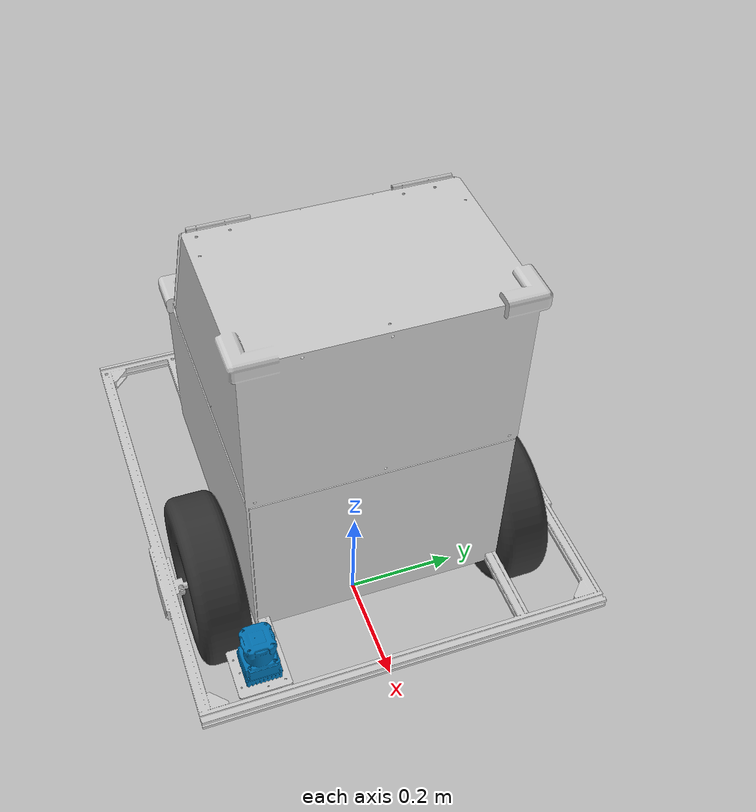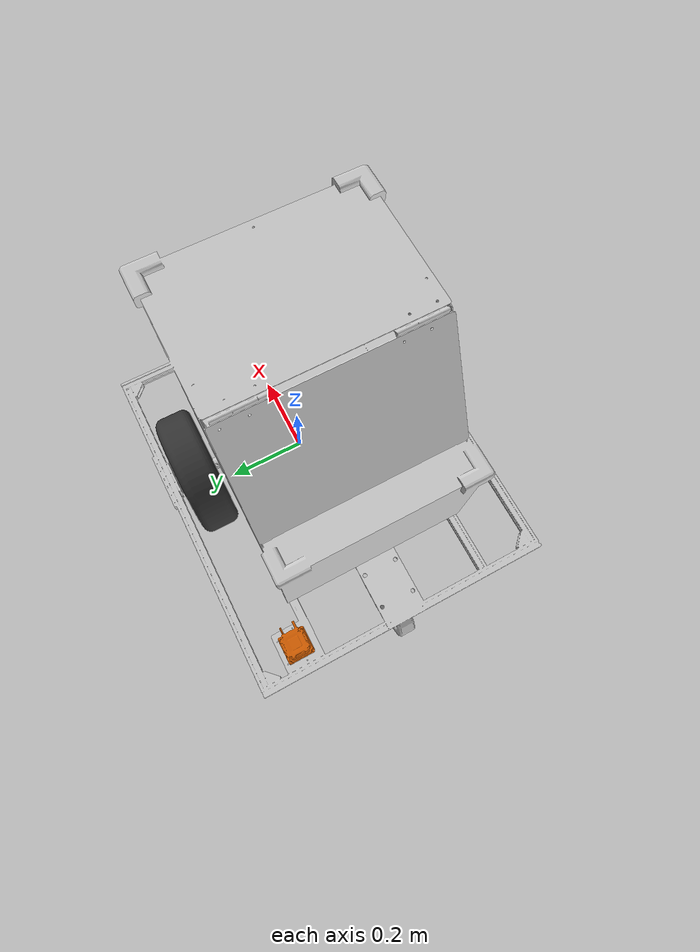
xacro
<?xml version="1.0"?>
<robot name="naviton" xmlns:xacro="http://ros.org/wiki/xacro">

  <xacro:include filename="$(find kcctsim)/urdf/base/base.urdf.xacro"/>
  <xacro:include filename="$(find kcctsim)/urdf/wheel/wheel.urdf.xacro"/>
  <xacro:include filename="$(find kcctsim)/urdf/sensors/gps/gps.urdf.xacro"/>
  <xacro:include filename="$(find kcctsim)/urdf/sensors/gim30/gim30.urdf.xacro"/>
  <xacro:include filename="$(find kcctsim)/urdf/sensors/lrf/lrf.urdf.xacro"/>
  <xacro:include filename="$(find velodyne_description)/urdf/HDL-32E.urdf.xacro"/>
  <xacro:include filename="$(find kcctsim)/urdf/sensors/imu/imu.urdf.xacro" />

  <!-- =============== Link & Joint =============== -->
  <!-- Base -->
  <link name="base_foot_point"/>
  <xacro:base_v0 parent="base_foot_point">
	<origin xyz="0 0 0.0"/>
  </xacro:base_v0>

  <!-- Wheel -->
  <!-- Right Wheel -->
  <xacro:wheel_v0 prefix="right" parent="base_link">
	<origin xyz="0 -0.2775 0.1575"/>
	<axis xyz="0 1 0"/>
  </xacro:wheel_v0>
  <!-- Left Wheel -->
  <xacro:wheel_v0 prefix="left" parent="base_link">
	<origin xyz="0 0.2775 0.1575" rpy="0 0 ${M_PI}"/>
	<axis xyz="0 -1 0"/>
  </xacro:wheel_v0>

  <!-- Sensors -->
  <!-- GPS -->

  <!-- Gim30 -->

  <!-- Front LRF -->
  <xacro:lrf_v0 prefix="front" parent="base_link">
  	<origin xyz="0.225 -0.245 0.195"/>
  </xacro:lrf_v0>

  <!-- Rear LRF -->
  <xacro:lrf_v0 prefix="rear" parent="base_link">
  	<origin xyz="-0.485 0.245 0.195" rpy="0 0 -${M_PI}"/>
  </xacro:lrf_v0>

  <link name="camera_link"/>
  <joint name="lrf_link_joint" type="fixed">
	<parent link="base_link"/>
	<child link="camera_link"/>
	<origin xyz="0 0 0.195"/>
  </joint>

  <!-- ===============  Transmission =============== -->
  <xacro:wheel_trans_v0 prefix="right"/>
  <xacro:wheel_trans_v0 prefix="left"/>

  <!-- =============== Gazebo =============== -->
  <gazebo>
    <plugin name="gazebo_ros_control" filename="libgazebo_ros_control.so">
    </plugin>
  </gazebo>

  <!-- Base -->
  <xacro:base_gazebo_v0/>

  <!-- Wheel -->
  <xacro:wheel_gazebo_v0 prefix="right"/>
  <xacro:wheel_gazebo_v0 prefix="left"/>

  <!--IMU-->
  <xacro:imu_macro prefix="imu" parent="base_link" xyz="0 0 0"/>

  <!-- LRF -->
  <xacro:lrf_gazebo_v0 topic_name="scan1" prefix="front"
					   min_rad="-1.65806278939" max_rad="1.65806278939"
					   min_range="0.10" max_range="60.0"/>
  <xacro:lrf_gazebo_v0 topic_name="scan2" prefix="rear"
					   min_rad="-2.35619449019" max_rad="1.65619449019"
					   min_range="0.10" max_range="60.0"/>
  <!-- VHDL-32E -->
</robot>

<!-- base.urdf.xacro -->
<robot xmlns:xacro="http://ros.org/wiki/xacro">

  <xacro:include filename="$(find kcctsim)/urdf/base/base.gazebo.xacro"/>

  <xacro:macro name="base_v0" params="parent *joint_origin">
	<joint name="base_link_joint" type="fixed">
	  <insert_block name="joint_origin"/>
	  <parent link="${parent}"/>
	  <child link="base_link"/>
	</joint>

	<link name="base_link">
	  <visual>
		<geometry>
		 <mesh filename="package://kcctsim/meshes/STL/base/body.stl"/>
		</geometry>
		<material name="gray">
    <color rgba="0.8 0.8 0.8 2.0"/>
  </material>
	  </visual>
	  <collision>
		<geometry>
		  <mesh filename="package://kcctsim/meshes/STL/base/body.stl"/>
		</geometry>
	  </collision>
	  <inertial>
		<origin xyz="-0.061 0 -0.002"/>
		<mass value="45"/>
		<inertia ixx="1.64890" ixy="0" ixz="-0.21424"
				 iyy="2.24766" iyz="0"
				 izz="1.25664" />
	  </inertial>
	</link>
  </xacro:macro>

</robot>

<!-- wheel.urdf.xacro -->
<robot xmlns:xacro="http://ros.org/wiki/xacro">

  <xacro:include filename="$(find kcctsim)/urdf/common.xacro"/>
  <xacro:include filename="$(find kcctsim)/urdf/wheel/wheel.transmission.xacro"/>
  <xacro:include filename="$(find kcctsim)/urdf/wheel/wheel.gazebo.xacro"/>

  <property name="wheel_radius" value="0.1575"/>
  <property name="wheel_length" value="0.032"/>
  <property name="wheel_mass" value="2.0"/>

  <xacro:macro name="wheel_v0" params="prefix parent *joint_origin *joint_axis">
	<joint name="${prefix}_wheel_joint" type="continuous">
	  <insert_block name="joint_origin"/>
	  <parent link="${parent}"/>
	  <child link="${prefix}_wheel_link"/>
	  <insert_block name="joint_axis"/>
	</joint>

	<link name="${prefix}_wheel_link">
	  <visual>
		<geometry>
		   <mesh filename="package://kcctsim/meshes/STL/wheel/wheel.stl"/>
		</geometry>
		<material name="black">
    		<color rgba="0.2 0.2 0.2 2.0"/>
  		</material>
	  </visual>
	  <collision>
		<origin xyz="0 -0.003 0" rpy="${-M_PI/2} 0 0"/>
		<geometry>
		  <cylinder radius="${wheel_radius}" length="${wheel_length}"/>
		</geometry>
	  </collision>
	  <inertial>
		<origin xyz="0 -0.003 0" rpy="${-M_PI/2} 0 0"/>
		<cylinder_inertial mass="${wheel_mass}"
						   radius="${wheel_radius}" length="${wheel_length}"/>
	  </inertial>
	</link>
  </xacro:macro>

</robot>

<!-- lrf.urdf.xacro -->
<robot xmlns:xacro="http://ros.org/wiki/xacro">

  <xacro:include filename="$(find kcctsim)/urdf/common.xacro"/>
  <xacro:include filename="$(find kcctsim)/urdf/sensors/lrf/lrf.gazebo.xacro"/>

  <xacro:macro name="lrf_v0" params="prefix parent *joint_origin">
	<joint name="${prefix}_lrf_joint" type="fixed">
	  <insert_block name="joint_origin"/>
	  <parent link="${parent}"/>
	  <child link="${prefix}_lrf_link"/>
	</joint>

	<link name="${prefix}_lrf_link">
	  <visual>
		<geometry>
		  <mesh filename="package://kcctsim/meshes/STL/sensors/utm30lx.stl"/>
		</geometry>
	  </visual>
	  <collision>
		<geometry>
		  <mesh filename="package://kcctsim/meshes/STL/sensors/utm30lx.stl"/>
		</geometry>
	  </collision>
	  <inertial>
		<origin xyz="0 0 -0.0164"/>
		<box_inertial mass="0.4" height="0.07" width="0.07" depth="0.08"/>
	  </inertial>
	</link>
  </xacro:macro>

</robot>

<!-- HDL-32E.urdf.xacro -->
<robot xmlns:xacro="http://www.ros.org/wiki/xacro" name="HDL-32E">
  <xacro:property name="M_PI" value="3.1415926535897931" />
  <xacro:macro name="HDL-32E" params="*origin parent:=base_link name:=velodyne tf_prefix:='' topic:=/velodyne_points organize_cloud:=false hz:=10 lasers:=32 samples:=2187 collision_range:=0.3 min_range:=0.9 max_range:=130.0 noise:=0.008 min_angle:=-${M_PI} max_angle:=${M_PI} gpu:=false">

    <joint name="${name}_base_mount_joint" type="fixed">
      <xacro:insert_block name="origin" />
      <parent link="${parent}"/>
      <child link="${name}_base_link"/>
    </joint>

    <link name="${name}_base_link">
      <inertial>
        <mass value="1.0"/>
        <origin xyz="0 0 0.07212"/>
        <inertia ixx="${(1.0 * (3.0*0.04267*0.04267 + 0.14424*0.14424)) / 12.0}" ixy="0" ixz="0"
          iyy="${(1.0 * (3.0*0.04267*0.04267 + 0.14424*0.14424)) / 12.0}" iyz="0"
          izz="${0.5 * 1.0 * (0.04267*0.04267)}"/>
      </inertial>
      <visual>
        <geometry>
          <mesh filename="package://velodyne_description/meshes/HDL32E_base.dae" />
        </geometry>
      </visual>
      <collision>
        <origin rpy="0 0 0" xyz="0 0 0.07212"/>
        <geometry>
          <cylinder radius="0.04267" length="0.14424"/>
        </geometry>
      </collision>
    </link>

    <joint name="${name}_base_scan_joint" type="fixed" >
      <origin xyz="0 0 0.09081" rpy="0 0 0" />
      <parent link="${name}_base_link" />
      <child link="${name}"/>
    </joint>

    <link name="${name}">
      <inertial>
        <mass value="0.01"/>
        <origin xyz="0 0 0"/>
        <inertia ixx="1e-7" ixy="0" ixz="0" iyy="1e-7" iyz="0" izz="1e-7"/>
      </inertial>
      <visual>
        <origin xyz="0 0 -0.09081" rpy="0 0 0" />
        <geometry>
          <mesh filename="package://velodyne_description/meshes/HDL32E_scan.dae" />
        </geometry>
      </visual>
      <collision>
        <geometry>
          <sphere radius="0"/>
        </geometry>
      </collision>
    </link>

    <!-- Gazebo requires the velodyne_gazebo_plugins package -->
    <gazebo reference="${name}">
      <xacro:if value="${gpu}">
        <sensor type="gpu_ray" name="${name}-HDL32E">
          <pose>0 0 0 0 0 0</pose>
          <visualize>false</visualize>
          <update_rate>${hz}</update_rate>
          <ray>
            <scan>
              <horizontal>
                <samples>${samples}</samples>
                <resolution>1</resolution>
                <min_angle>${min_angle}</min_angle>
                <max_angle>${max_angle}</max_angle>
              </horizontal>
              <vertical>
                <samples>${lasers}</samples>
                <resolution>1</resolution>
                <min_angle>-${5.0*M_PI/180.0}</min_angle>
                <max_angle> ${85.0*M_PI/180.0}</max_angle>
              </vertical>
            </scan>
            <range>
              <min>${collision_range}</min>
              <max>${max_range+1}</max>
              <resolution>0.001</resolution>
            </range>
            <noise>
              <type>gaussian</type>
              <mean>0.0</mean>
              <stddev>0.0</stddev>
            </noise>
          </ray>
          <plugin name="gazebo_ros_laser_controller" filename="libgazebo_ros_velodyne_laser.so">
            <ros>
              <namespace>/${name}</namespace>
              <remapping>~/out:=${topic}</remapping>
            </ros>
            <tf_prefix>${tf_prefix}</tf_prefix>
            <frame_name>${name}</frame_name>
            <organize_cloud>${organize_cloud}</organize_cloud>
            <min_range>${min_range}</min_range>
            <max_range>${max_range}</max_range>
            <gaussian_noise>${noise}</gaussian_noise>
          </plugin>
        </sensor>
      </xacro:if>
      <xacro:unless value="${gpu}">
        <sensor type="ray" name="${name}-HDL32E">
          <pose>0 0 0 0 0 0</pose>
          <visualize>false</visualize>
          <update_rate>${hz}</update_rate>
          <ray>
            <scan>
              <horizontal>
                <samples>${samples}</samples>
                <resolution>1</resolution>
                <min_angle>${min_angle}</min_angle>
                <max_angle>${max_angle}</max_angle>
              </horizontal>
              <vertical>
                <samples>${lasers}</samples>
                <resolution>1</resolution>
                <min_angle>-${5.0*M_PI/180.0}</min_angle>
                <max_angle> ${85.0*M_PI/180.0}</max_angle>
              </vertical>
            </scan>
            <range>
              <min>${collision_range}</min>
              <max>${max_range+1}</max>
              <resolution>0.001</resolution>
            </range>
            <noise>
              <type>gaussian</type>
              <mean>0.0</mean>
              <stddev>0.0</stddev>
            </noise>
          </ray>
          <plugin name="gazebo_ros_laser_controller" filename="libgazebo_ros_velodyne_laser.so">
            <ros>
              <namespace>/${name}</namespace>
              <remapping>~/out:=${topic}</remapping>
            </ros>
            <tf_prefix>${tf_prefix}</tf_prefix>
            <frame_name>${name}</frame_name>
            <organize_cloud>${organize_cloud}</organize_cloud>
            <min_range>${min_range}</min_range>
            <max_range>${max_range}</max_range>
            <gaussian_noise>${noise}</gaussian_noise>
          </plugin>
        </sensor>
      </xacro:unless>
    </gazebo>

  </xacro:macro>
</robot>

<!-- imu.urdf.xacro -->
<robot name="dtw_robot" xmlns:xacro="http://ros.org/wiki/xacro">
  <xacro:macro name="imu_macro" params="parent prefix xyz">
    <joint name="imu_joint" type="fixed">
      <parent link="${parent}"/>
      <child  link="${prefix}_link"/>
      <origin xyz="${xyz}" rpy="0 0 0"/>
    </joint>
    <link name="${prefix}_link"/>
    <gazebo reference="${prefix}_link">
      <gravity>true</gravity>
      <sensor name="imu_sensor" type="imu">
        <always_on>true</always_on>
        <update_rate>100</update_rate>
        <visualize>true</visualize>
        <topic>data</topic>
        <plugin filename="libgazebo_ros_imu_sensor.so" name="imu_plugin">
          <topicName>${prefix}/data</topicName>
          <bodyName>${prefix}_link</bodyName>
          <updateRateHZ>10.0</updateRateHZ>
          <gaussianNoise>0.0</gaussianNoise>
          <xyzOffset>0 0 0</xyzOffset>
          <rpyOffset>0 0 0</rpyOffset>
          <frameName>${prefix}_link</frameName>
        </plugin>
        <pose>0 0 0 0 0 0</pose>
      </sensor>
    </gazebo>
  </xacro:macro>
</robot>
